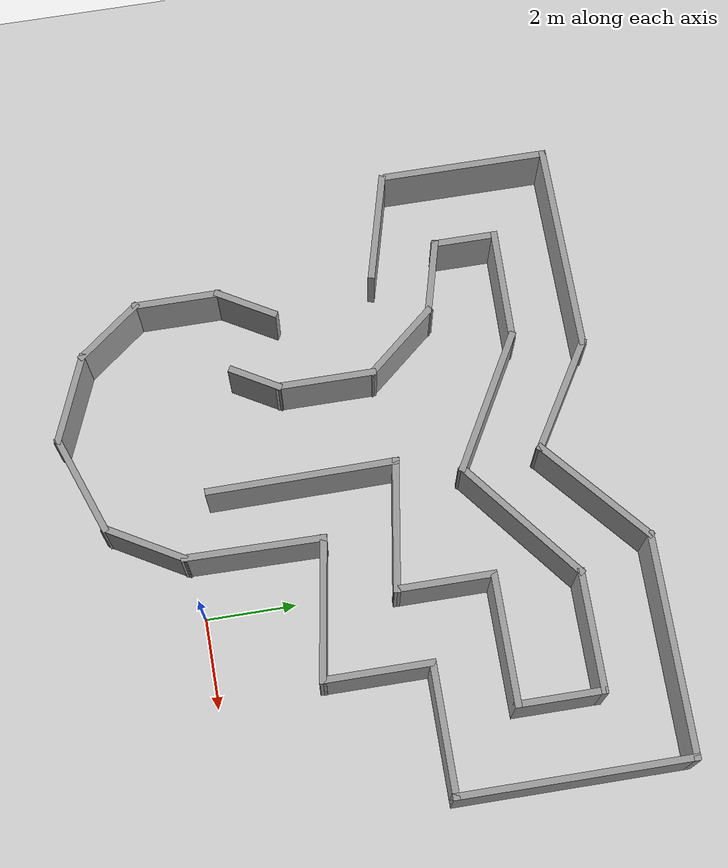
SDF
<sdf version="1.7">
 <world name="default">
  <model name="ground_plane">
   <static>1</static>
   <link name="link">
    <collision name="collision">
     <geometry><plane><normal>0 0 1</normal><size>100 100</size></plane></geometry>
     <surface>
      <contact><collide_bitmask>65535</collide_bitmask></contact>
      <friction><ode><mu>100</mu><mu2>50</mu2></ode></friction>
     </surface>
    </collision>
    <visual name="visual">
     <cast_shadows>0</cast_shadows>
     <geometry><plane><normal>0 0 1</normal><size>100 100</size></plane></geometry>
     <material>
      <script><uri>file://media/materials/scripts/gazebo.material</uri><name>Gazebo/Grey</name></script>
     </material>
    </visual>
   </link>
  </model>
  <model name="map_2">
   <link name="Wall_10">
    <pose>4.01324 4.53292 0 0 -0 3.14159</pose>
    <visual name="Wall_10_Visual">
     <pose>0 0 0.75 0 -0 0</pose>
     <geometry><box><size>2.75 0.15 1.5</size></box></geometry>
     <material>
      <script><uri>file://media/materials/scripts/gazebo.material</uri><name>Gazebo/Grey</name></script>
      <ambient>1 1 1 1</ambient>
      <shader type="pixel"/>
     </material>
     <meta><layer>0</layer></meta>
    </visual>
    <collision name="Wall_10_Collision">
     <pose>0 0 0.75 0 -0 0</pose>
     <geometry><box><size>2.75 0.15 1.5</size></box></geometry>
     <surface>
      <friction>
       <ode><mu>1</mu><mu2>1</mu2><fdir1>0 0 0</fdir1><slip1>0</slip1><slip2>0</slip2></ode>
       <torsional>
        <coefficient>1</coefficient>
        <patch_radius>0</patch_radius>
        <surface_radius>0</surface_radius>
        <use_patch_radius>1</use_patch_radius>
        <ode><slip>0</slip></ode>
       </torsional>
      </friction>
      <bounce><restitution_coefficient>0</restitution_coefficient><threshold>1e+06</threshold></bounce>
      <contact>
       <collide_without_contact>0</collide_without_contact>
       <collide_without_contact_bitmask>1</collide_without_contact_bitmask>
       <collide_bitmask>1</collide_bitmask>
       <ode>
        <soft_cfm>0</soft_cfm>
        <soft_erp>0.2</soft_erp>
        <kp>1e+13</kp>
        <kd>1</kd>
        <max_vel>0.01</max_vel>
        <min_depth>0</min_depth>
       </ode>
       <bullet>
        <split_impulse>1</split_impulse>
        <split_impulse_penetration_threshold>-0.01</split_impulse_penetration_threshold>
        <soft_cfm>0</soft_cfm>
        <soft_erp>0.2</soft_erp>
        <kp>1e+13</kp>
        <kd>1</kd>
       </bullet>
      </contact>
     </surface>
    </collision>
   </link>
   <link name="Wall_12">
    <pose>1.38174 3.48292 0 0 -0 0.667741</pose>
    <visual name="Wall_12_Visual">
     <pose>0 0 0.75 0 -0 0</pose>
     <geometry><box><size>3.54164 0.15 1.5</size></box></geometry>
     <material>
      <script><uri>file://media/materials/scripts/gazebo.material</uri><name>Gazebo/Grey</name></script>
      <ambient>1 1 1 1</ambient>
      <shader type="pixel"/>
     </material>
     <meta><layer>0</layer></meta>
    </visual>
    <collision name="Wall_12_Collision">
     <pose>0 0 0.75 0 -0 0</pose>
     <geometry><box><size>3.54164 0.15 1.5</size></box></geometry>
     <surface>
      <friction>
       <ode><mu>1</mu><mu2>1</mu2><fdir1>0 0 0</fdir1><slip1>0</slip1><slip2>0</slip2></ode>
       <torsional>
        <coefficient>1</coefficient>
        <patch_radius>0</patch_radius>
        <surface_radius>0</surface_radius>
        <use_patch_radius>1</use_patch_radius>
        <ode><slip>0</slip></ode>
       </torsional>
      </friction>
      <bounce><restitution_coefficient>0</restitution_coefficient><threshold>1e+06</threshold></bounce>
      <contact>
       <collide_without_contact>0</collide_without_contact>
       <collide_without_contact_bitmask>1</collide_without_contact_bitmask>
       <collide_bitmask>1</collide_bitmask>
       <ode>
        <soft_cfm>0</soft_cfm>
        <soft_erp>0.2</soft_erp>
        <kp>1e+13</kp>
        <kd>1</kd>
        <max_vel>0.01</max_vel>
        <min_depth>0</min_depth>
       </ode>
       <bullet>
        <split_impulse>1</split_impulse>
        <split_impulse_penetration_threshold>-0.01</split_impulse_penetration_threshold>
        <soft_cfm>0</soft_cfm>
        <soft_erp>0.2</soft_erp>
        <kp>1e+13</kp>
        <kd>1</kd>
       </bullet>
      </contact>
     </surface>
    </collision>
   </link>
   <link name="Wall_14">
    <pose>-1.37776 3.23742 0 0 0 -0.513054</pose>
    <visual name="Wall_14_Visual">
     <pose>0 0 0.75 0 -0 0</pose>
     <geometry><box><size>3.42797 0.15 1.5</size></box></geometry>
     <material>
      <script><uri>file://media/materials/scripts/gazebo.material</uri><name>Gazebo/Grey</name></script>
      <ambient>1 1 1 1</ambient>
      <shader type="pixel"/>
     </material>
     <meta><layer>0</layer></meta>
    </visual>
    <collision name="Wall_14_Collision">
     <pose>0 0 0.75 0 -0 0</pose>
     <geometry><box><size>3.42797 0.15 1.5</size></box></geometry>
     <surface>
      <friction>
       <ode><mu>1</mu><mu2>1</mu2><fdir1>0 0 0</fdir1><slip1>0</slip1><slip2>0</slip2></ode>
       <torsional>
        <coefficient>1</coefficient>
        <patch_radius>0</patch_radius>
        <surface_radius>0</surface_radius>
        <use_patch_radius>1</use_patch_radius>
        <ode><slip>0</slip></ode>
       </torsional>
      </friction>
      <bounce><restitution_coefficient>0</restitution_coefficient><threshold>1e+06</threshold></bounce>
      <contact>
       <collide_without_contact>0</collide_without_contact>
       <collide_without_contact_bitmask>1</collide_without_contact_bitmask>
       <collide_bitmask>1</collide_bitmask>
       <ode>
        <soft_cfm>0</soft_cfm>
        <soft_erp>0.2</soft_erp>
        <kp>1e+13</kp>
        <kd>1</kd>
        <max_vel>0.01</max_vel>
        <min_depth>0</min_depth>
       </ode>
       <bullet>
        <split_impulse>1</split_impulse>
        <split_impulse_penetration_threshold>-0.01</split_impulse_penetration_threshold>
        <soft_cfm>0</soft_cfm>
        <soft_erp>0.2</soft_erp>
        <kp>1e+13</kp>
        <kd>1</kd>
       </bullet>
      </contact>
     </surface>
    </collision>
   </link>
   <link name="Wall_16">
    <pose>-4.01276 4.06192 0 0 0 -0.016568</pose>
    <visual name="Wall_16_Visual">
     <pose>0 0 0.75 0 -0 0</pose>
     <geometry><box><size>2.56379 0.15 1.5</size></box></geometry>
     <material>
      <script><uri>file://media/materials/scripts/gazebo.material</uri><name>Gazebo/Grey</name></script>
      <ambient>1 1 1 1</ambient>
      <shader type="pixel"/>
     </material>
     <meta><layer>0</layer></meta>
    </visual>
    <collision name="Wall_16_Collision">
     <pose>0 0 0.75 0 -0 0</pose>
     <geometry><box><size>2.56379 0.15 1.5</size></box></geometry>
     <surface>
      <friction>
       <ode><mu>1</mu><mu2>1</mu2><fdir1>0 0 0</fdir1><slip1>0</slip1><slip2>0</slip2></ode>
       <torsional>
        <coefficient>1</coefficient>
        <patch_radius>0</patch_radius>
        <surface_radius>0</surface_radius>
        <use_patch_radius>1</use_patch_radius>
        <ode><slip>0</slip></ode>
       </torsional>
      </friction>
      <bounce><restitution_coefficient>0</restitution_coefficient><threshold>1e+06</threshold></bounce>
      <contact>
       <collide_without_contact>0</collide_without_contact>
       <collide_without_contact_bitmask>1</collide_without_contact_bitmask>
       <collide_bitmask>1</collide_bitmask>
       <ode>
        <soft_cfm>0</soft_cfm>
        <soft_erp>0.2</soft_erp>
        <kp>1e+13</kp>
        <kd>1</kd>
        <max_vel>0.01</max_vel>
        <min_depth>0</min_depth>
       </ode>
       <bullet>
        <split_impulse>1</split_impulse>
        <split_impulse_penetration_threshold>-0.01</split_impulse_penetration_threshold>
        <soft_cfm>0</soft_cfm>
        <soft_erp>0.2</soft_erp>
        <kp>1e+13</kp>
        <kd>1</kd>
       </bullet>
      </contact>
     </surface>
    </collision>
   </link>
   <link name="Wall_18">
    <pose>-5.21976 3.40692 0 0 0 -1.5708</pose>
    <visual name="Wall_18_Visual">
     <pose>0 0 0.75 0 -0 0</pose>
     <geometry><box><size>1.5 0.15 1.5</size></box></geometry>
     <material>
      <script><uri>file://media/materials/scripts/gazebo.material</uri><name>Gazebo/Grey</name></script>
      <ambient>1 1 1 1</ambient>
      <shader type="pixel"/>
     </material>
     <meta><layer>0</layer></meta>
    </visual>
    <collision name="Wall_18_Collision">
     <pose>0 0 0.75 0 -0 0</pose>
     <geometry><box><size>1.5 0.15 1.5</size></box></geometry>
     <surface>
      <friction>
       <ode><mu>1</mu><mu2>1</mu2><fdir1>0 0 0</fdir1><slip1>0</slip1><slip2>0</slip2></ode>
       <torsional>
        <coefficient>1</coefficient>
        <patch_radius>0</patch_radius>
        <surface_radius>0</surface_radius>
        <use_patch_radius>1</use_patch_radius>
        <ode><slip>0</slip></ode>
       </torsional>
      </friction>
      <bounce><restitution_coefficient>0</restitution_coefficient><threshold>1e+06</threshold></bounce>
      <contact>
       <collide_without_contact>0</collide_without_contact>
       <collide_without_contact_bitmask>1</collide_without_contact_bitmask>
       <collide_bitmask>1</collide_bitmask>
       <ode>
        <soft_cfm>0</soft_cfm>
        <soft_erp>0.2</soft_erp>
        <kp>1e+13</kp>
        <kd>1</kd>
        <max_vel>0.01</max_vel>
        <min_depth>0</min_depth>
       </ode>
       <bullet>
        <split_impulse>1</split_impulse>
        <split_impulse_penetration_threshold>-0.01</split_impulse_penetration_threshold>
        <soft_cfm>0</soft_cfm>
        <soft_erp>0.2</soft_erp>
        <kp>1e+13</kp>
        <kd>1</kd>
       </bullet>
      </contact>
     </surface>
    </collision>
   </link>
   <link name="Wall_19">
    <pose>-4.44676 2.52492 0 0 0 -0.261649</pose>
    <visual name="Wall_19_Visual">
     <pose>0 0 0.75 0 -0 0</pose>
     <geometry><box><size>1.75 0.15 1.5</size></box></geometry>
     <material>
      <script><uri>file://media/materials/scripts/gazebo.material</uri><name>Gazebo/Grey</name></script>
      <ambient>1 1 1 1</ambient>
      <shader type="pixel"/>
     </material>
     <meta><layer>0</layer></meta>
    </visual>
    <collision name="Wall_19_Collision">
     <pose>0 0 0.75 0 -0 0</pose>
     <geometry><box><size>1.75 0.15 1.5</size></box></geometry>
     <surface>
      <friction>
       <ode><mu>1</mu><mu2>1</mu2><fdir1>0 0 0</fdir1><slip1>0</slip1><slip2>0</slip2></ode>
       <torsional>
        <coefficient>1</coefficient>
        <patch_radius>0</patch_radius>
        <surface_radius>0</surface_radius>
        <use_patch_radius>1</use_patch_radius>
        <ode><slip>0</slip></ode>
       </torsional>
      </friction>
      <bounce><restitution_coefficient>0</restitution_coefficient><threshold>1e+06</threshold></bounce>
      <contact>
       <collide_without_contact>0</collide_without_contact>
       <collide_without_contact_bitmask>1</collide_without_contact_bitmask>
       <collide_bitmask>1</collide_bitmask>
       <ode>
        <soft_cfm>0</soft_cfm>
        <soft_erp>0.2</soft_erp>
        <kp>1e+13</kp>
        <kd>1</kd>
        <max_vel>0.01</max_vel>
        <min_depth>0</min_depth>
       </ode>
       <bullet>
        <split_impulse>1</split_impulse>
        <split_impulse_penetration_threshold>-0.01</split_impulse_penetration_threshold>
        <soft_cfm>0</soft_cfm>
        <soft_erp>0.2</soft_erp>
        <kp>1e+13</kp>
        <kd>1</kd>
       </bullet>
      </contact>
     </surface>
    </collision>
   </link>
   <link name="Wall_2">
    <pose>-0.335262 -1.03908 0 0 -0 1.5788</pose>
    <visual name="Wall_2_Visual">
     <pose>0 0 0.75 0 -0 0</pose>
     <geometry><box><size>4.27213 0.15 1.5</size></box></geometry>
     <material>
      <script><uri>file://media/materials/scripts/gazebo.material</uri><name>Gazebo/Grey</name></script>
      <ambient>1 1 1 1</ambient>
      <shader type="pixel"/>
     </material>
     <meta><layer>0</layer></meta>
    </visual>
    <collision name="Wall_2_Collision">
     <pose>0 0 0.75 0 -0 0</pose>
     <geometry><box><size>4.27213 0.15 1.5</size></box></geometry>
     <surface>
      <friction>
       <ode><mu>1</mu><mu2>1</mu2><fdir1>0 0 0</fdir1><slip1>0</slip1><slip2>0</slip2></ode>
       <torsional>
        <coefficient>1</coefficient>
        <patch_radius>0</patch_radius>
        <surface_radius>0</surface_radius>
        <use_patch_radius>1</use_patch_radius>
        <ode><slip>0</slip></ode>
       </torsional>
      </friction>
      <bounce><restitution_coefficient>0</restitution_coefficient><threshold>1e+06</threshold></bounce>
      <contact>
       <collide_without_contact>0</collide_without_contact>
       <collide_without_contact_bitmask>1</collide_without_contact_bitmask>
       <collide_bitmask>1</collide_bitmask>
       <ode>
        <soft_cfm>0</soft_cfm>
        <soft_erp>0.2</soft_erp>
        <kp>1e+13</kp>
        <kd>1</kd>
        <max_vel>0.01</max_vel>
        <min_depth>0</min_depth>
       </ode>
       <bullet>
        <split_impulse>1</split_impulse>
        <split_impulse_penetration_threshold>-0.01</split_impulse_penetration_threshold>
        <soft_cfm>0</soft_cfm>
        <soft_erp>0.2</soft_erp>
        <kp>1e+13</kp>
        <kd>1</kd>
       </bullet>
      </contact>
     </surface>
    </collision>
   </link>
   <link name="Wall_21">
    <pose>-3.05876 1.59092 0 0 -0 2.27293</pose>
    <visual name="Wall_21_Visual">
     <pose>0 0 0.75 0 -0 0</pose>
     <geometry><box><size>2.05434 0.15 1.5</size></box></geometry>
     <material>
      <script><uri>file://media/materials/scripts/gazebo.material</uri><name>Gazebo/Grey</name></script>
      <ambient>1 1 1 1</ambient>
      <shader type="pixel"/>
     </material>
     <meta><layer>0</layer></meta>
    </visual>
    <collision name="Wall_21_Collision">
     <pose>0 0 0.75 0 -0 0</pose>
     <geometry><box><size>2.05434 0.15 1.5</size></box></geometry>
     <surface>
      <friction>
       <ode><mu>1</mu><mu2>1</mu2><fdir1>0 0 0</fdir1><slip1>0</slip1><slip2>0</slip2></ode>
       <torsional>
        <coefficient>1</coefficient>
        <patch_radius>0</patch_radius>
        <surface_radius>0</surface_radius>
        <use_patch_radius>1</use_patch_radius>
        <ode><slip>0</slip></ode>
       </torsional>
      </friction>
      <bounce><restitution_coefficient>0</restitution_coefficient><threshold>1e+06</threshold></bounce>
      <contact>
       <collide_without_contact>0</collide_without_contact>
       <collide_without_contact_bitmask>1</collide_without_contact_bitmask>
       <collide_bitmask>1</collide_bitmask>
       <ode>
        <soft_cfm>0</soft_cfm>
        <soft_erp>0.2</soft_erp>
        <kp>1e+13</kp>
        <kd>1</kd>
        <max_vel>0.01</max_vel>
        <min_depth>0</min_depth>
       </ode>
       <bullet>
        <split_impulse>1</split_impulse>
        <split_impulse_penetration_threshold>-0.01</split_impulse_penetration_threshold>
        <soft_cfm>0</soft_cfm>
        <soft_erp>0.2</soft_erp>
        <kp>1e+13</kp>
        <kd>1</kd>
       </bullet>
      </contact>
     </surface>
    </collision>
   </link>
   <link name="Wall_42">
    <pose>-2.44376 -0.186078 0 0 0 -1.5708</pose>
    <visual name="Wall_42_Visual">
     <pose>0 0 0.75 0 -0 0</pose>
     <geometry><box><size>2.25 0.15 1.5</size></box></geometry>
     <material>
      <script><uri>file://media/materials/scripts/gazebo.material</uri><name>Gazebo/Grey</name></script>
      <ambient>1 1 1 1</ambient>
      <shader type="pixel"/>
     </material>
     <meta><layer>0</layer></meta>
    </visual>
    <collision name="Wall_42_Collision">
     <pose>0 0 0.75 0 -0 0</pose>
     <geometry><box><size>2.25 0.15 1.5</size></box></geometry>
     <surface>
      <friction>
       <ode><mu>1</mu><mu2>1</mu2><fdir1>0 0 0</fdir1><slip1>0</slip1><slip2>0</slip2></ode>
       <torsional>
        <coefficient>1</coefficient>
        <patch_radius>0</patch_radius>
        <surface_radius>0</surface_radius>
        <use_patch_radius>1</use_patch_radius>
        <ode><slip>0</slip></ode>
       </torsional>
      </friction>
      <bounce><restitution_coefficient>0</restitution_coefficient><threshold>1e+06</threshold></bounce>
      <contact>
       <collide_without_contact>0</collide_without_contact>
       <collide_without_contact_bitmask>1</collide_without_contact_bitmask>
       <collide_bitmask>1</collide_bitmask>
       <ode>
        <soft_cfm>0</soft_cfm>
        <soft_erp>0.2</soft_erp>
        <kp>1e+13</kp>
        <kd>1</kd>
        <max_vel>0.01</max_vel>
        <min_depth>0</min_depth>
       </ode>
       <bullet>
        <split_impulse>1</split_impulse>
        <split_impulse_penetration_threshold>-0.01</split_impulse_penetration_threshold>
        <soft_cfm>0</soft_cfm>
        <soft_erp>0.2</soft_erp>
        <kp>1e+13</kp>
        <kd>1</kd>
       </bullet>
      </contact>
     </surface>
    </collision>
   </link>
   <link name="Wall_43">
    <pose>-2.71876 -1.71208 0 0 0 -2.09468</pose>
    <visual name="Wall_43_Visual">
     <pose>0 0 0.75 0 -0 0</pose>
     <geometry><box><size>1.25 0.15 1.5</size></box></geometry>
     <material>
      <script><uri>file://media/materials/scripts/gazebo.material</uri><name>Gazebo/Grey</name></script>
      <ambient>1 1 1 1</ambient>
      <shader type="pixel"/>
     </material>
     <meta><layer>0</layer></meta>
    </visual>
    <collision name="Wall_43_Collision">
     <pose>0 0 0.75 0 -0 0</pose>
     <geometry><box><size>1.25 0.15 1.5</size></box></geometry>
     <surface>
      <friction>
       <ode><mu>1</mu><mu2>1</mu2><fdir1>0 0 0</fdir1><slip1>0</slip1><slip2>0</slip2></ode>
       <torsional>
        <coefficient>1</coefficient>
        <patch_radius>0</patch_radius>
        <surface_radius>0</surface_radius>
        <use_patch_radius>1</use_patch_radius>
        <ode><slip>0</slip></ode>
       </torsional>
      </friction>
      <bounce><restitution_coefficient>0</restitution_coefficient><threshold>1e+06</threshold></bounce>
      <contact>
       <collide_without_contact>0</collide_without_contact>
       <collide_without_contact_bitmask>1</collide_without_contact_bitmask>
       <collide_bitmask>1</collide_bitmask>
       <ode>
        <soft_cfm>0</soft_cfm>
        <soft_erp>0.2</soft_erp>
        <kp>1e+13</kp>
        <kd>1</kd>
        <max_vel>0.01</max_vel>
        <min_depth>0</min_depth>
       </ode>
       <bullet>
        <split_impulse>1</split_impulse>
        <split_impulse_penetration_threshold>-0.01</split_impulse_penetration_threshold>
        <soft_cfm>0</soft_cfm>
        <soft_erp>0.2</soft_erp>
        <kp>1e+13</kp>
        <kd>1</kd>
       </bullet>
      </contact>
     </surface>
    </collision>
   </link>
   <link name="Wall_45">
    <pose>-4.48526 -1.67358 0 0 0 -2.09444</pose>
    <visual name="Wall_45_Visual">
     <pose>0 0 0.75 0 -0 0</pose>
     <geometry><box><size>1.5 0.15 1.5</size></box></geometry>
     <material>
      <script><uri>file://media/materials/scripts/gazebo.material</uri><name>Gazebo/Grey</name></script>
      <ambient>1 1 1 1</ambient>
      <shader type="pixel"/>
     </material>
     <meta><layer>0</layer></meta>
    </visual>
    <collision name="Wall_45_Collision">
     <pose>0 0 0.75 0 -0 0</pose>
     <geometry><box><size>1.5 0.15 1.5</size></box></geometry>
     <surface>
      <friction>
       <ode><mu>1</mu><mu2>1</mu2><fdir1>0 0 0</fdir1><slip1>0</slip1><slip2>0</slip2></ode>
       <torsional>
        <coefficient>1</coefficient>
        <patch_radius>0</patch_radius>
        <surface_radius>0</surface_radius>
        <use_patch_radius>1</use_patch_radius>
        <ode><slip>0</slip></ode>
       </torsional>
      </friction>
      <bounce><restitution_coefficient>0</restitution_coefficient><threshold>1e+06</threshold></bounce>
      <contact>
       <collide_without_contact>0</collide_without_contact>
       <collide_without_contact_bitmask>1</collide_without_contact_bitmask>
       <collide_bitmask>1</collide_bitmask>
       <ode>
        <soft_cfm>0</soft_cfm>
        <soft_erp>0.2</soft_erp>
        <kp>1e+13</kp>
        <kd>1</kd>
        <max_vel>0.01</max_vel>
        <min_depth>0</min_depth>
       </ode>
       <bullet>
        <split_impulse>1</split_impulse>
        <split_impulse_penetration_threshold>-0.01</split_impulse_penetration_threshold>
        <soft_cfm>0</soft_cfm>
        <soft_erp>0.2</soft_erp>
        <kp>1e+13</kp>
        <kd>1</kd>
       </bullet>
      </contact>
     </surface>
    </collision>
   </link>
   <link name="Wall_46">
    <pose>-4.82276 -3.18308 0 0 0 -1.5708</pose>
    <visual name="Wall_46_Visual">
     <pose>0 0 0.75 0 -0 0</pose>
     <geometry><box><size>2 0.15 1.5</size></box></geometry>
     <material>
      <script><uri>file://media/materials/scripts/gazebo.material</uri><name>Gazebo/Grey</name></script>
      <ambient>1 1 1 1</ambient>
      <shader type="pixel"/>
     </material>
     <meta><layer>0</layer></meta>
    </visual>
    <collision name="Wall_46_Collision">
     <pose>0 0 0.75 0 -0 0</pose>
     <geometry><box><size>2 0.15 1.5</size></box></geometry>
     <surface>
      <friction>
       <ode><mu>1</mu><mu2>1</mu2><fdir1>0 0 0</fdir1><slip1>0</slip1><slip2>0</slip2></ode>
       <torsional>
        <coefficient>1</coefficient>
        <patch_radius>0</patch_radius>
        <surface_radius>0</surface_radius>
        <use_patch_radius>1</use_patch_radius>
        <ode><slip>0</slip></ode>
       </torsional>
      </friction>
      <bounce><restitution_coefficient>0</restitution_coefficient><threshold>1e+06</threshold></bounce>
      <contact>
       <collide_without_contact>0</collide_without_contact>
       <collide_without_contact_bitmask>1</collide_without_contact_bitmask>
       <collide_bitmask>1</collide_bitmask>
       <ode>
        <soft_cfm>0</soft_cfm>
        <soft_erp>0.2</soft_erp>
        <kp>1e+13</kp>
        <kd>1</kd>
        <max_vel>0.01</max_vel>
        <min_depth>0</min_depth>
       </ode>
       <bullet>
        <split_impulse>1</split_impulse>
        <split_impulse_penetration_threshold>-0.01</split_impulse_penetration_threshold>
        <soft_cfm>0</soft_cfm>
        <soft_erp>0.2</soft_erp>
        <kp>1e+13</kp>
        <kd>1</kd>
       </bullet>
      </contact>
     </surface>
    </collision>
   </link>
   <link name="Wall_48">
    <pose>-4.32126 -4.76258 0 0 -0 2.22461</pose>
    <visual name="Wall_48_Visual">
     <pose>0 0 0.75 0 -0 0</pose>
     <geometry><box><size>1.79931 0.15 1.5</size></box></geometry>
     <material>
      <script><uri>file://media/materials/scripts/gazebo.material</uri><name>Gazebo/Grey</name></script>
      <ambient>1 1 1 1</ambient>
      <shader type="pixel"/>
     </material>
     <meta><layer>0</layer></meta>
    </visual>
    <collision name="Wall_48_Collision">
     <pose>0 0 0.75 0 -0 0</pose>
     <geometry><box><size>1.79931 0.15 1.5</size></box></geometry>
     <surface>
      <friction>
       <ode><mu>1</mu><mu2>1</mu2><fdir1>0 0 0</fdir1><slip1>0</slip1><slip2>0</slip2></ode>
       <torsional>
        <coefficient>1</coefficient>
        <patch_radius>0</patch_radius>
        <surface_radius>0</surface_radius>
        <use_patch_radius>1</use_patch_radius>
        <ode><slip>0</slip></ode>
       </torsional>
      </friction>
      <bounce><restitution_coefficient>0</restitution_coefficient><threshold>1e+06</threshold></bounce>
      <contact>
       <collide_without_contact>0</collide_without_contact>
       <collide_without_contact_bitmask>1</collide_without_contact_bitmask>
       <collide_bitmask>1</collide_bitmask>
       <ode>
        <soft_cfm>0</soft_cfm>
        <soft_erp>0.2</soft_erp>
        <kp>1e+13</kp>
        <kd>1</kd>
        <max_vel>0.01</max_vel>
        <min_depth>0</min_depth>
       </ode>
       <bullet>
        <split_impulse>1</split_impulse>
        <split_impulse_penetration_threshold>-0.01</split_impulse_penetration_threshold>
        <soft_cfm>0</soft_cfm>
        <soft_erp>0.2</soft_erp>
        <kp>1e+13</kp>
        <kd>1</kd>
       </bullet>
      </contact>
     </surface>
    </collision>
   </link>
   <link name="Wall_5">
    <pose>1.05574 0.802422 0 0 -0 2.98689</pose>
    <visual name="Wall_5_Visual">
     <pose>0 0 0.75 0 -0 0</pose>
     <geometry><box><size>2.99933 0.15 1.5</size></box></geometry>
     <material>
      <script><uri>file://media/materials/scripts/gazebo.material</uri><name>Gazebo/Grey</name></script>
      <ambient>1 1 1 1</ambient>
      <shader type="pixel"/>
     </material>
     <meta><layer>0</layer></meta>
    </visual>
    <collision name="Wall_5_Collision">
     <pose>0 0 0.75 0 -0 0</pose>
     <geometry><box><size>2.99933 0.15 1.5</size></box></geometry>
     <surface>
      <friction>
       <ode><mu>1</mu><mu2>1</mu2><fdir1>0 0 0</fdir1><slip1>0</slip1><slip2>0</slip2></ode>
       <torsional>
        <coefficient>1</coefficient>
        <patch_radius>0</patch_radius>
        <surface_radius>0</surface_radius>
        <use_patch_radius>1</use_patch_radius>
        <ode><slip>0</slip></ode>
       </torsional>
      </friction>
      <bounce><restitution_coefficient>0</restitution_coefficient><threshold>1e+06</threshold></bounce>
      <contact>
       <collide_without_contact>0</collide_without_contact>
       <collide_without_contact_bitmask>1</collide_without_contact_bitmask>
       <collide_bitmask>1</collide_bitmask>
       <ode>
        <soft_cfm>0</soft_cfm>
        <soft_erp>0.2</soft_erp>
        <kp>1e+13</kp>
        <kd>1</kd>
        <max_vel>0.01</max_vel>
        <min_depth>0</min_depth>
       </ode>
       <bullet>
        <split_impulse>1</split_impulse>
        <split_impulse_penetration_threshold>-0.01</split_impulse_penetration_threshold>
        <soft_cfm>0</soft_cfm>
        <soft_erp>0.2</soft_erp>
        <kp>1e+13</kp>
        <kd>1</kd>
       </bullet>
      </contact>
     </surface>
    </collision>
   </link>
   <link name="Wall_51">
    <pose>-2.90126 -5.79458 0 0 -0 2.75164</pose>
    <visual name="Wall_51_Visual">
     <pose>0 0 0.75 0 -0 0</pose>
     <geometry><box><size>2.13517 0.15 1.5</size></box></geometry>
     <material>
      <script><uri>file://media/materials/scripts/gazebo.material</uri><name>Gazebo/Grey</name></script>
      <ambient>1 1 1 1</ambient>
      <shader type="pixel"/>
     </material>
     <meta><layer>0</layer></meta>
    </visual>
    <collision name="Wall_51_Collision">
     <pose>0 0 0.75 0 -0 0</pose>
     <geometry><box><size>2.13517 0.15 1.5</size></box></geometry>
     <surface>
      <friction>
       <ode><mu>1</mu><mu2>1</mu2><fdir1>0 0 0</fdir1><slip1>0</slip1><slip2>0</slip2></ode>
       <torsional>
        <coefficient>1</coefficient>
        <patch_radius>0</patch_radius>
        <surface_radius>0</surface_radius>
        <use_patch_radius>1</use_patch_radius>
        <ode><slip>0</slip></ode>
       </torsional>
      </friction>
      <bounce><restitution_coefficient>0</restitution_coefficient><threshold>1e+06</threshold></bounce>
      <contact>
       <collide_without_contact>0</collide_without_contact>
       <collide_without_contact_bitmask>1</collide_without_contact_bitmask>
       <collide_bitmask>1</collide_bitmask>
       <ode>
        <soft_cfm>0</soft_cfm>
        <soft_erp>0.2</soft_erp>
        <kp>1e+13</kp>
        <kd>1</kd>
        <max_vel>0.01</max_vel>
        <min_depth>0</min_depth>
       </ode>
       <bullet>
        <split_impulse>1</split_impulse>
        <split_impulse_penetration_threshold>-0.01</split_impulse_penetration_threshold>
        <soft_cfm>0</soft_cfm>
        <soft_erp>0.2</soft_erp>
        <kp>1e+13</kp>
        <kd>1</kd>
       </bullet>
      </contact>
     </surface>
    </collision>
   </link>
   <link name="Wall_53">
    <pose>0.603738 -4.61208 0 0 0 -2.09443</pose>
    <visual name="Wall_53_Visual">
     <pose>0 0 0.75 0 -0 0</pose>
     <geometry><box><size>2 0.15 1.5</size></box></geometry>
     <material>
      <script><uri>file://media/materials/scripts/gazebo.material</uri><name>Gazebo/Grey</name></script>
      <ambient>1 1 1 1</ambient>
      <shader type="pixel"/>
     </material>
     <meta><layer>0</layer></meta>
    </visual>
    <collision name="Wall_53_Collision">
     <pose>0 0 0.75 0 -0 0</pose>
     <geometry><box><size>2 0.15 1.5</size></box></geometry>
     <surface>
      <friction>
       <ode><mu>1</mu><mu2>1</mu2><fdir1>0 0 0</fdir1><slip1>0</slip1><slip2>0</slip2></ode>
       <torsional>
        <coefficient>1</coefficient>
        <patch_radius>0</patch_radius>
        <surface_radius>0</surface_radius>
        <use_patch_radius>1</use_patch_radius>
        <ode><slip>0</slip></ode>
       </torsional>
      </friction>
      <bounce><restitution_coefficient>0</restitution_coefficient><threshold>1e+06</threshold></bounce>
      <contact>
       <collide_without_contact>0</collide_without_contact>
       <collide_without_contact_bitmask>1</collide_without_contact_bitmask>
       <collide_bitmask>1</collide_bitmask>
       <ode>
        <soft_cfm>0</soft_cfm>
        <soft_erp>0.2</soft_erp>
        <kp>1e+13</kp>
        <kd>1</kd>
        <max_vel>0.01</max_vel>
        <min_depth>0</min_depth>
       </ode>
       <bullet>
        <split_impulse>1</split_impulse>
        <split_impulse_penetration_threshold>-0.01</split_impulse_penetration_threshold>
        <soft_cfm>0</soft_cfm>
        <soft_erp>0.2</soft_erp>
        <kp>1e+13</kp>
        <kd>1</kd>
       </bullet>
      </contact>
     </surface>
    </collision>
   </link>
   <link name="Wall_54">
    <pose>-0.920762 -5.79258 0 0 0 -2.79839</pose>
    <visual name="Wall_54_Visual">
     <pose>0 0 0.75 0 -0 0</pose>
     <geometry><box><size>2.40606 0.15 1.5</size></box></geometry>
     <material>
      <script><uri>file://media/materials/scripts/gazebo.material</uri><name>Gazebo/Grey</name></script>
      <ambient>1 1 1 1</ambient>
      <shader type="pixel"/>
     </material>
     <meta><layer>0</layer></meta>
    </visual>
    <collision name="Wall_54_Collision">
     <pose>0 0 0.75 0 -0 0</pose>
     <geometry><box><size>2.40606 0.15 1.5</size></box></geometry>
     <surface>
      <friction>
       <ode><mu>1</mu><mu2>1</mu2><fdir1>0 0 0</fdir1><slip1>0</slip1><slip2>0</slip2></ode>
       <torsional>
        <coefficient>1</coefficient>
        <patch_radius>0</patch_radius>
        <surface_radius>0</surface_radius>
        <use_patch_radius>1</use_patch_radius>
        <ode><slip>0</slip></ode>
       </torsional>
      </friction>
      <bounce><restitution_coefficient>0</restitution_coefficient><threshold>1e+06</threshold></bounce>
      <contact>
       <collide_without_contact>0</collide_without_contact>
       <collide_without_contact_bitmask>1</collide_without_contact_bitmask>
       <collide_bitmask>1</collide_bitmask>
       <ode>
        <soft_cfm>0</soft_cfm>
        <soft_erp>0.2</soft_erp>
        <kp>1e+13</kp>
        <kd>1</kd>
        <max_vel>0.01</max_vel>
        <min_depth>0</min_depth>
       </ode>
       <bullet>
        <split_impulse>1</split_impulse>
        <split_impulse_penetration_threshold>-0.01</split_impulse_penetration_threshold>
        <soft_cfm>0</soft_cfm>
        <soft_erp>0.2</soft_erp>
        <kp>1e+13</kp>
        <kd>1</kd>
       </bullet>
      </contact>
     </surface>
    </collision>
   </link>
   <link name="Wall_56">
    <pose>1.08274 -2.30408 0 0 -0 1.55985</pose>
    <visual name="Wall_56_Visual">
     <pose>0 0 0.75 0 -0 0</pose>
     <geometry><box><size>3.16414 0.15 1.5</size></box></geometry>
     <material>
      <script><uri>file://media/materials/scripts/gazebo.material</uri><name>Gazebo/Grey</name></script>
      <ambient>1 1 1 1</ambient>
      <shader type="pixel"/>
     </material>
     <meta><layer>0</layer></meta>
    </visual>
    <collision name="Wall_56_Collision">
     <pose>0 0 0.75 0 -0 0</pose>
     <geometry><box><size>3.16414 0.15 1.5</size></box></geometry>
     <surface>
      <friction>
       <ode><mu>1</mu><mu2>1</mu2><fdir1>0 0 0</fdir1><slip1>0</slip1><slip2>0</slip2></ode>
       <torsional>
        <coefficient>1</coefficient>
        <patch_radius>0</patch_radius>
        <surface_radius>0</surface_radius>
        <use_patch_radius>1</use_patch_radius>
        <ode><slip>0</slip></ode>
       </torsional>
      </friction>
      <bounce><restitution_coefficient>0</restitution_coefficient><threshold>1e+06</threshold></bounce>
      <contact>
       <collide_without_contact>0</collide_without_contact>
       <collide_without_contact_bitmask>1</collide_without_contact_bitmask>
       <collide_bitmask>1</collide_bitmask>
       <ode>
        <soft_cfm>0</soft_cfm>
        <soft_erp>0.2</soft_erp>
        <kp>1e+13</kp>
        <kd>1</kd>
        <max_vel>0.01</max_vel>
        <min_depth>0</min_depth>
       </ode>
       <bullet>
        <split_impulse>1</split_impulse>
        <split_impulse_penetration_threshold>-0.01</split_impulse_penetration_threshold>
        <soft_cfm>0</soft_cfm>
        <soft_erp>0.2</soft_erp>
        <kp>1e+13</kp>
        <kd>1</kd>
       </bullet>
      </contact>
     </surface>
    </collision>
   </link>
   <link name="Wall_61">
    <pose>2.62424 -1.04158 0 0 -0 2.98262</pose>
    <visual name="Wall_61_Visual">
     <pose>0 0 0.75 0 -0 0</pose>
     <geometry><box><size>3.23875 0.15 1.5</size></box></geometry>
     <material>
      <script><uri>file://media/materials/scripts/gazebo.material</uri><name>Gazebo/Grey</name></script>
      <ambient>1 1 1 1</ambient>
      <shader type="pixel"/>
     </material>
     <meta><layer>0</layer></meta>
    </visual>
    <collision name="Wall_61_Collision">
     <pose>0 0 0.75 0 -0 0</pose>
     <geometry><box><size>3.23875 0.15 1.5</size></box></geometry>
     <surface>
      <friction>
       <ode><mu>1</mu><mu2>1</mu2><fdir1>0 0 0</fdir1><slip1>0</slip1><slip2>0</slip2></ode>
       <torsional>
        <coefficient>1</coefficient>
        <patch_radius>0</patch_radius>
        <surface_radius>0</surface_radius>
        <use_patch_radius>1</use_patch_radius>
        <ode><slip>0</slip></ode>
       </torsional>
      </friction>
      <bounce><restitution_coefficient>0</restitution_coefficient><threshold>1e+06</threshold></bounce>
      <contact>
       <collide_without_contact>0</collide_without_contact>
       <collide_without_contact_bitmask>1</collide_without_contact_bitmask>
       <collide_bitmask>1</collide_bitmask>
       <ode>
        <soft_cfm>0</soft_cfm>
        <soft_erp>0.2</soft_erp>
        <kp>1e+13</kp>
        <kd>1</kd>
        <max_vel>0.01</max_vel>
        <min_depth>0</min_depth>
       </ode>
       <bullet>
        <split_impulse>1</split_impulse>
        <split_impulse_penetration_threshold>-0.01</split_impulse_penetration_threshold>
        <soft_cfm>0</soft_cfm>
        <soft_erp>0.2</soft_erp>
        <kp>1e+13</kp>
        <kd>1</kd>
       </bullet>
      </contact>
     </surface>
    </collision>
   </link>
   <link name="Wall_63">
    <pose>4.14924 -0.111078 0 0 -0 1.5708</pose>
    <visual name="Wall_63_Visual">
     <pose>0 0 0.75 0 -0 0</pose>
     <geometry><box><size>2.5 0.15 1.5</size></box></geometry>
     <material>
      <script><uri>file://media/materials/scripts/gazebo.material</uri><name>Gazebo/Grey</name></script>
      <ambient>1 1 1 1</ambient>
      <shader type="pixel"/>
     </material>
     <meta><layer>0</layer></meta>
    </visual>
    <collision name="Wall_63_Collision">
     <pose>0 0 0.75 0 -0 0</pose>
     <geometry><box><size>2.5 0.15 1.5</size></box></geometry>
     <surface>
      <friction>
       <ode><mu>1</mu><mu2>1</mu2><fdir1>0 0 0</fdir1><slip1>0</slip1><slip2>0</slip2></ode>
       <torsional>
        <coefficient>1</coefficient>
        <patch_radius>0</patch_radius>
        <surface_radius>0</surface_radius>
        <use_patch_radius>1</use_patch_radius>
        <ode><slip>0</slip></ode>
       </torsional>
      </friction>
      <bounce><restitution_coefficient>0</restitution_coefficient><threshold>1e+06</threshold></bounce>
      <contact>
       <collide_without_contact>0</collide_without_contact>
       <collide_without_contact_bitmask>1</collide_without_contact_bitmask>
       <collide_bitmask>1</collide_bitmask>
       <ode>
        <soft_cfm>0</soft_cfm>
        <soft_erp>0.2</soft_erp>
        <kp>1e+13</kp>
        <kd>1</kd>
        <max_vel>0.01</max_vel>
        <min_depth>0</min_depth>
       </ode>
       <bullet>
        <split_impulse>1</split_impulse>
        <split_impulse_penetration_threshold>-0.01</split_impulse_penetration_threshold>
        <soft_cfm>0</soft_cfm>
        <soft_erp>0.2</soft_erp>
        <kp>1e+13</kp>
        <kd>1</kd>
       </bullet>
      </contact>
     </surface>
    </collision>
   </link>
   <link name="Wall_64">
    <pose>5.57424 1.06392 0 0 -0 0</pose>
    <visual name="Wall_64_Visual">
     <pose>0 0 0.75 0 -0 0</pose>
     <geometry><box><size>3 0.15 1.5</size></box></geometry>
     <material>
      <script><uri>file://media/materials/scripts/gazebo.material</uri><name>Gazebo/Grey</name></script>
      <ambient>1 1 1 1</ambient>
      <shader type="pixel"/>
     </material>
     <meta><layer>0</layer></meta>
    </visual>
    <collision name="Wall_64_Collision">
     <pose>0 0 0.75 0 -0 0</pose>
     <geometry><box><size>3 0.15 1.5</size></box></geometry>
     <surface>
      <friction>
       <ode><mu>1</mu><mu2>1</mu2><fdir1>0 0 0</fdir1><slip1>0</slip1><slip2>0</slip2></ode>
       <torsional>
        <coefficient>1</coefficient>
        <patch_radius>0</patch_radius>
        <surface_radius>0</surface_radius>
        <use_patch_radius>1</use_patch_radius>
        <ode><slip>0</slip></ode>
       </torsional>
      </friction>
      <bounce><restitution_coefficient>0</restitution_coefficient><threshold>1e+06</threshold></bounce>
      <contact>
       <collide_without_contact>0</collide_without_contact>
       <collide_without_contact_bitmask>1</collide_without_contact_bitmask>
       <collide_bitmask>1</collide_bitmask>
       <ode>
        <soft_cfm>0</soft_cfm>
        <soft_erp>0.2</soft_erp>
        <kp>1e+13</kp>
        <kd>1</kd>
        <max_vel>0.01</max_vel>
        <min_depth>0</min_depth>
       </ode>
       <bullet>
        <split_impulse>1</split_impulse>
        <split_impulse_penetration_threshold>-0.01</split_impulse_penetration_threshold>
        <soft_cfm>0</soft_cfm>
        <soft_erp>0.2</soft_erp>
        <kp>1e+13</kp>
        <kd>1</kd>
       </bullet>
      </contact>
     </surface>
    </collision>
   </link>
   <link name="Wall_65">
    <pose>6.99924 3.61392 0 0 -0 1.5708</pose>
    <visual name="Wall_65_Visual">
     <pose>0 0 0.75 0 -0 0</pose>
     <geometry><box><size>5.25 0.15 1.5</size></box></geometry>
     <material>
      <script><uri>file://media/materials/scripts/gazebo.material</uri><name>Gazebo/Grey</name></script>
      <ambient>1 1 1 1</ambient>
      <shader type="pixel"/>
     </material>
     <meta><layer>0</layer></meta>
    </visual>
    <collision name="Wall_65_Collision">
     <pose>0 0 0.75 0 -0 0</pose>
     <geometry><box><size>5.25 0.15 1.5</size></box></geometry>
     <surface>
      <friction>
       <ode><mu>1</mu><mu2>1</mu2><fdir1>0 0 0</fdir1><slip1>0</slip1><slip2>0</slip2></ode>
       <torsional>
        <coefficient>1</coefficient>
        <patch_radius>0</patch_radius>
        <surface_radius>0</surface_radius>
        <use_patch_radius>1</use_patch_radius>
        <ode><slip>0</slip></ode>
       </torsional>
      </friction>
      <bounce><restitution_coefficient>0</restitution_coefficient><threshold>1e+06</threshold></bounce>
      <contact>
       <collide_without_contact>0</collide_without_contact>
       <collide_without_contact_bitmask>1</collide_without_contact_bitmask>
       <collide_bitmask>1</collide_bitmask>
       <ode>
        <soft_cfm>0</soft_cfm>
        <soft_erp>0.2</soft_erp>
        <kp>1e+13</kp>
        <kd>1</kd>
        <max_vel>0.01</max_vel>
        <min_depth>0</min_depth>
       </ode>
       <bullet>
        <split_impulse>1</split_impulse>
        <split_impulse_penetration_threshold>-0.01</split_impulse_penetration_threshold>
        <soft_cfm>0</soft_cfm>
        <soft_erp>0.2</soft_erp>
        <kp>1e+13</kp>
        <kd>1</kd>
       </bullet>
      </contact>
     </surface>
    </collision>
   </link>
   <link name="Wall_66">
    <pose>4.57424 6.16392 0 0 -0 3.14159</pose>
    <visual name="Wall_66_Visual">
     <pose>0 0 0.75 0 -0 0</pose>
     <geometry><box><size>5 0.15 1.5</size></box></geometry>
     <material>
      <script><uri>file://media/materials/scripts/gazebo.material</uri><name>Gazebo/Grey</name></script>
      <ambient>1 1 1 1</ambient>
      <shader type="pixel"/>
     </material>
     <meta><layer>0</layer></meta>
    </visual>
    <collision name="Wall_66_Collision">
     <pose>0 0 0.75 0 -0 0</pose>
     <geometry><box><size>5 0.15 1.5</size></box></geometry>
     <surface>
      <friction>
       <ode><mu>1</mu><mu2>1</mu2><fdir1>0 0 0</fdir1><slip1>0</slip1><slip2>0</slip2></ode>
       <torsional>
        <coefficient>1</coefficient>
        <patch_radius>0</patch_radius>
        <surface_radius>0</surface_radius>
        <use_patch_radius>1</use_patch_radius>
        <ode><slip>0</slip></ode>
       </torsional>
      </friction>
      <bounce><restitution_coefficient>0</restitution_coefficient><threshold>1e+06</threshold></bounce>
      <contact>
       <collide_without_contact>0</collide_without_contact>
       <collide_without_contact_bitmask>1</collide_without_contact_bitmask>
       <collide_bitmask>1</collide_bitmask>
       <ode>
        <soft_cfm>0</soft_cfm>
        <soft_erp>0.2</soft_erp>
        <kp>1e+13</kp>
        <kd>1</kd>
        <max_vel>0.01</max_vel>
        <min_depth>0</min_depth>
       </ode>
       <bullet>
        <split_impulse>1</split_impulse>
        <split_impulse_penetration_threshold>-0.01</split_impulse_penetration_threshold>
        <soft_cfm>0</soft_cfm>
        <soft_erp>0.2</soft_erp>
        <kp>1e+13</kp>
        <kd>1</kd>
       </bullet>
      </contact>
     </surface>
    </collision>
   </link>
   <link name="Wall_68">
    <pose>1.00124 5.17742 0 0 -0 0.70988</pose>
    <visual name="Wall_68_Visual">
     <pose>0 0 0.75 0 -0 0</pose>
     <geometry><box><size>3.17756 0.15 1.5</size></box></geometry>
     <material>
      <script><uri>file://media/materials/scripts/gazebo.material</uri><name>Gazebo/Grey</name></script>
      <ambient>1 1 1 1</ambient>
      <shader type="pixel"/>
     </material>
     <meta><layer>0</layer></meta>
    </visual>
    <collision name="Wall_68_Collision">
     <pose>0 0 0.75 0 -0 0</pose>
     <geometry><box><size>3.17756 0.15 1.5</size></box></geometry>
     <surface>
      <friction>
       <ode><mu>1</mu><mu2>1</mu2><fdir1>0 0 0</fdir1><slip1>0</slip1><slip2>0</slip2></ode>
       <torsional>
        <coefficient>1</coefficient>
        <patch_radius>0</patch_radius>
        <surface_radius>0</surface_radius>
        <use_patch_radius>1</use_patch_radius>
        <ode><slip>0</slip></ode>
       </torsional>
      </friction>
      <bounce><restitution_coefficient>0</restitution_coefficient><threshold>1e+06</threshold></bounce>
      <contact>
       <collide_without_contact>0</collide_without_contact>
       <collide_without_contact_bitmask>1</collide_without_contact_bitmask>
       <collide_bitmask>1</collide_bitmask>
       <ode>
        <soft_cfm>0</soft_cfm>
        <soft_erp>0.2</soft_erp>
        <kp>1e+13</kp>
        <kd>1</kd>
        <max_vel>0.01</max_vel>
        <min_depth>0</min_depth>
       </ode>
       <bullet>
        <split_impulse>1</split_impulse>
        <split_impulse_penetration_threshold>-0.01</split_impulse_penetration_threshold>
        <soft_cfm>0</soft_cfm>
        <soft_erp>0.2</soft_erp>
        <kp>1e+13</kp>
        <kd>1</kd>
       </bullet>
      </contact>
     </surface>
    </collision>
   </link>
   <link name="Wall_7">
    <pose>2.46324 1.63292 0 0 -0 1.5708</pose>
    <visual name="Wall_7_Visual">
     <pose>0 0 0.75 0 -0 0</pose>
     <geometry><box><size>2.25 0.15 1.5</size></box></geometry>
     <material>
      <script><uri>file://media/materials/scripts/gazebo.material</uri><name>Gazebo/Grey</name></script>
      <ambient>1 1 1 1</ambient>
      <shader type="pixel"/>
     </material>
     <meta><layer>0</layer></meta>
    </visual>
    <collision name="Wall_7_Collision">
     <pose>0 0 0.75 0 -0 0</pose>
     <geometry><box><size>2.25 0.15 1.5</size></box></geometry>
     <surface>
      <friction>
       <ode><mu>1</mu><mu2>1</mu2><fdir1>0 0 0</fdir1><slip1>0</slip1><slip2>0</slip2></ode>
       <torsional>
        <coefficient>1</coefficient>
        <patch_radius>0</patch_radius>
        <surface_radius>0</surface_radius>
        <use_patch_radius>1</use_patch_radius>
        <ode><slip>0</slip></ode>
       </torsional>
      </friction>
      <bounce><restitution_coefficient>0</restitution_coefficient><threshold>1e+06</threshold></bounce>
      <contact>
       <collide_without_contact>0</collide_without_contact>
       <collide_without_contact_bitmask>1</collide_without_contact_bitmask>
       <collide_bitmask>1</collide_bitmask>
       <ode>
        <soft_cfm>0</soft_cfm>
        <soft_erp>0.2</soft_erp>
        <kp>1e+13</kp>
        <kd>1</kd>
        <max_vel>0.01</max_vel>
        <min_depth>0</min_depth>
       </ode>
       <bullet>
        <split_impulse>1</split_impulse>
        <split_impulse_penetration_threshold>-0.01</split_impulse_penetration_threshold>
        <soft_cfm>0</soft_cfm>
        <soft_erp>0.2</soft_erp>
        <kp>1e+13</kp>
        <kd>1</kd>
       </bullet>
      </contact>
     </surface>
    </collision>
   </link>
   <link name="Wall_70">
    <pose>-1.27276 4.87342 0 0 -0 2.59668</pose>
    <visual name="Wall_70_Visual">
     <pose>0 0 0.75 0 -0 0</pose>
     <geometry><box><size>2.7834 0.15 1.5</size></box></geometry>
     <material>
      <script><uri>file://media/materials/scripts/gazebo.material</uri><name>Gazebo/Grey</name></script>
      <ambient>1 1 1 1</ambient>
      <shader type="pixel"/>
     </material>
     <meta><layer>0</layer></meta>
    </visual>
    <collision name="Wall_70_Collision">
     <pose>0 0 0.75 0 -0 0</pose>
     <geometry><box><size>2.7834 0.15 1.5</size></box></geometry>
     <surface>
      <friction>
       <ode><mu>1</mu><mu2>1</mu2><fdir1>0 0 0</fdir1><slip1>0</slip1><slip2>0</slip2></ode>
       <torsional>
        <coefficient>1</coefficient>
        <patch_radius>0</patch_radius>
        <surface_radius>0</surface_radius>
        <use_patch_radius>1</use_patch_radius>
        <ode><slip>0</slip></ode>
       </torsional>
      </friction>
      <bounce><restitution_coefficient>0</restitution_coefficient><threshold>1e+06</threshold></bounce>
      <contact>
       <collide_without_contact>0</collide_without_contact>
       <collide_without_contact_bitmask>1</collide_without_contact_bitmask>
       <collide_bitmask>1</collide_bitmask>
       <ode>
        <soft_cfm>0</soft_cfm>
        <soft_erp>0.2</soft_erp>
        <kp>1e+13</kp>
        <kd>1</kd>
        <max_vel>0.01</max_vel>
        <min_depth>0</min_depth>
       </ode>
       <bullet>
        <split_impulse>1</split_impulse>
        <split_impulse_penetration_threshold>-0.01</split_impulse_penetration_threshold>
        <soft_cfm>0</soft_cfm>
        <soft_erp>0.2</soft_erp>
        <kp>1e+13</kp>
        <kd>1</kd>
       </bullet>
      </contact>
     </surface>
    </collision>
   </link>
   <link name="Wall_71">
    <pose>-4.69876 5.53942 0 0 0 -3.13442</pose>
    <visual name="Wall_71_Visual">
     <pose>0 0 0.75 0 -0 0</pose>
     <geometry><box><size>4.75 0.15 1.5</size></box></geometry>
     <material>
      <script><uri>file://media/materials/scripts/gazebo.material</uri><name>Gazebo/Grey</name></script>
      <ambient>1 1 1 1</ambient>
      <shader type="pixel"/>
     </material>
     <meta><layer>0</layer></meta>
    </visual>
    <collision name="Wall_71_Collision">
     <pose>0 0 0.75 0 -0 0</pose>
     <geometry><box><size>4.75 0.15 1.5</size></box></geometry>
     <surface>
      <friction>
       <ode><mu>1</mu><mu2>1</mu2><fdir1>0 0 0</fdir1><slip1>0</slip1><slip2>0</slip2></ode>
       <torsional>
        <coefficient>1</coefficient>
        <patch_radius>0</patch_radius>
        <surface_radius>0</surface_radius>
        <use_patch_radius>1</use_patch_radius>
        <ode><slip>0</slip></ode>
       </torsional>
      </friction>
      <bounce><restitution_coefficient>0</restitution_coefficient><threshold>1e+06</threshold></bounce>
      <contact>
       <collide_without_contact>0</collide_without_contact>
       <collide_without_contact_bitmask>1</collide_without_contact_bitmask>
       <collide_bitmask>1</collide_bitmask>
       <ode>
        <soft_cfm>0</soft_cfm>
        <soft_erp>0.2</soft_erp>
        <kp>1e+13</kp>
        <kd>1</kd>
        <max_vel>0.01</max_vel>
        <min_depth>0</min_depth>
       </ode>
       <bullet>
        <split_impulse>1</split_impulse>
        <split_impulse_penetration_threshold>-0.01</split_impulse_penetration_threshold>
        <soft_cfm>0</soft_cfm>
        <soft_erp>0.2</soft_erp>
        <kp>1e+13</kp>
        <kd>1</kd>
       </bullet>
      </contact>
     </surface>
    </collision>
   </link>
   <link name="Wall_74">
    <pose>-6.99876 3.72292 0 0 0 -1.5708</pose>
    <visual name="Wall_74_Visual">
     <pose>0 0 0.75 0 -0 0</pose>
     <geometry><box><size>3.75 0.15 1.5</size></box></geometry>
     <material>
      <script><uri>file://media/materials/scripts/gazebo.material</uri><name>Gazebo/Grey</name></script>
      <ambient>1 1 1 1</ambient>
      <shader type="pixel"/>
     </material>
     <meta><layer>0</layer></meta>
    </visual>
    <collision name="Wall_74_Collision">
     <pose>0 0 0.75 0 -0 0</pose>
     <geometry><box><size>3.75 0.15 1.5</size></box></geometry>
     <surface>
      <friction>
       <ode><mu>1</mu><mu2>1</mu2><fdir1>0 0 0</fdir1><slip1>0</slip1><slip2>0</slip2></ode>
       <torsional>
        <coefficient>1</coefficient>
        <patch_radius>0</patch_radius>
        <surface_radius>0</surface_radius>
        <use_patch_radius>1</use_patch_radius>
        <ode><slip>0</slip></ode>
       </torsional>
      </friction>
      <bounce><restitution_coefficient>0</restitution_coefficient><threshold>1e+06</threshold></bounce>
      <contact>
       <collide_without_contact>0</collide_without_contact>
       <collide_without_contact_bitmask>1</collide_without_contact_bitmask>
       <collide_bitmask>1</collide_bitmask>
       <ode>
        <soft_cfm>0</soft_cfm>
        <soft_erp>0.2</soft_erp>
        <kp>1e+13</kp>
        <kd>1</kd>
        <max_vel>0.01</max_vel>
        <min_depth>0</min_depth>
       </ode>
       <bullet>
        <split_impulse>1</split_impulse>
        <split_impulse_penetration_threshold>-0.01</split_impulse_penetration_threshold>
        <soft_cfm>0</soft_cfm>
        <soft_erp>0.2</soft_erp>
        <kp>1e+13</kp>
        <kd>1</kd>
       </bullet>
      </contact>
     </surface>
    </collision>
   </link>
   <link name="Wall_78">
    <pose>-5.83976 1.51042 0 0 -0 2.87948</pose>
    <visual name="Wall_78_Visual">
     <pose>0 0 0.75 0 -0 0</pose>
     <geometry><box><size>2.5 0.15 1.5</size></box></geometry>
     <material>
      <script><uri>file://media/materials/scripts/gazebo.material</uri><name>Gazebo/Grey</name></script>
      <ambient>1 1 1 1</ambient>
      <shader type="pixel"/>
     </material>
     <meta><layer>0</layer></meta>
    </visual>
    <collision name="Wall_78_Collision">
     <pose>0 0 0.75 0 -0 0</pose>
     <geometry><box><size>2.5 0.15 1.5</size></box></geometry>
     <surface>
      <friction>
       <ode><mu>1</mu><mu2>1</mu2><fdir1>0 0 0</fdir1><slip1>0</slip1><slip2>0</slip2></ode>
       <torsional>
        <coefficient>1</coefficient>
        <patch_radius>0</patch_radius>
        <surface_radius>0</surface_radius>
        <use_patch_radius>1</use_patch_radius>
        <ode><slip>0</slip></ode>
       </torsional>
      </friction>
      <bounce><restitution_coefficient>0</restitution_coefficient><threshold>1e+06</threshold></bounce>
      <contact>
       <collide_without_contact>0</collide_without_contact>
       <collide_without_contact_bitmask>1</collide_without_contact_bitmask>
       <collide_bitmask>1</collide_bitmask>
       <ode>
        <soft_cfm>0</soft_cfm>
        <soft_erp>0.2</soft_erp>
        <kp>1e+13</kp>
        <kd>1</kd>
        <max_vel>0.01</max_vel>
        <min_depth>0</min_depth>
       </ode>
       <bullet>
        <split_impulse>1</split_impulse>
        <split_impulse_penetration_threshold>-0.01</split_impulse_penetration_threshold>
        <soft_cfm>0</soft_cfm>
        <soft_erp>0.2</soft_erp>
        <kp>1e+13</kp>
        <kd>1</kd>
       </bullet>
      </contact>
     </surface>
    </collision>
   </link>
   <link name="Wall_8">
    <pose>3.88824 2.68292 0 0 -0 0</pose>
    <visual name="Wall_8_Visual">
     <pose>0 0 0.75 0 -0 0</pose>
     <geometry><box><size>3 0.15 1.5</size></box></geometry>
     <material>
      <script><uri>file://media/materials/scripts/gazebo.material</uri><name>Gazebo/Grey</name></script>
      <ambient>1 1 1 1</ambient>
      <shader type="pixel"/>
     </material>
     <meta><layer>0</layer></meta>
    </visual>
    <collision name="Wall_8_Collision">
     <pose>0 0 0.75 0 -0 0</pose>
     <geometry><box><size>3 0.15 1.5</size></box></geometry>
     <surface>
      <friction>
       <ode><mu>1</mu><mu2>1</mu2><fdir1>0 0 0</fdir1><slip1>0</slip1><slip2>0</slip2></ode>
       <torsional>
        <coefficient>1</coefficient>
        <patch_radius>0</patch_radius>
        <surface_radius>0</surface_radius>
        <use_patch_radius>1</use_patch_radius>
        <ode><slip>0</slip></ode>
       </torsional>
      </friction>
      <bounce><restitution_coefficient>0</restitution_coefficient><threshold>1e+06</threshold></bounce>
      <contact>
       <collide_without_contact>0</collide_without_contact>
       <collide_without_contact_bitmask>1</collide_without_contact_bitmask>
       <collide_bitmask>1</collide_bitmask>
       <ode>
        <soft_cfm>0</soft_cfm>
        <soft_erp>0.2</soft_erp>
        <kp>1e+13</kp>
        <kd>1</kd>
        <max_vel>0.01</max_vel>
        <min_depth>0</min_depth>
       </ode>
       <bullet>
        <split_impulse>1</split_impulse>
        <split_impulse_penetration_threshold>-0.01</split_impulse_penetration_threshold>
        <soft_cfm>0</soft_cfm>
        <soft_erp>0.2</soft_erp>
        <kp>1e+13</kp>
        <kd>1</kd>
       </bullet>
      </contact>
     </surface>
    </collision>
   </link>
   <link name="Wall_9">
    <pose>5.31324 3.60792 0 0 -0 1.5708</pose>
    <visual name="Wall_9_Visual">
     <pose>0 0 0.75 0 -0 0</pose>
     <geometry><box><size>2 0.15 1.5</size></box></geometry>
     <material>
      <script><uri>file://media/materials/scripts/gazebo.material</uri><name>Gazebo/Grey</name></script>
      <ambient>1 1 1 1</ambient>
      <shader type="pixel"/>
     </material>
     <meta><layer>0</layer></meta>
    </visual>
    <collision name="Wall_9_Collision">
     <pose>0 0 0.75 0 -0 0</pose>
     <geometry><box><size>2 0.15 1.5</size></box></geometry>
     <surface>
      <friction>
       <ode><mu>1</mu><mu2>1</mu2><fdir1>0 0 0</fdir1><slip1>0</slip1><slip2>0</slip2></ode>
       <torsional>
        <coefficient>1</coefficient>
        <patch_radius>0</patch_radius>
        <surface_radius>0</surface_radius>
        <use_patch_radius>1</use_patch_radius>
        <ode><slip>0</slip></ode>
       </torsional>
      </friction>
      <bounce><restitution_coefficient>0</restitution_coefficient><threshold>1e+06</threshold></bounce>
      <contact>
       <collide_without_contact>0</collide_without_contact>
       <collide_without_contact_bitmask>1</collide_without_contact_bitmask>
       <collide_bitmask>1</collide_bitmask>
       <ode>
        <soft_cfm>0</soft_cfm>
        <soft_erp>0.2</soft_erp>
        <kp>1e+13</kp>
        <kd>1</kd>
        <max_vel>0.01</max_vel>
        <min_depth>0</min_depth>
       </ode>
       <bullet>
        <split_impulse>1</split_impulse>
        <split_impulse_penetration_threshold>-0.01</split_impulse_penetration_threshold>
        <soft_cfm>0</soft_cfm>
        <soft_erp>0.2</soft_erp>
        <kp>1e+13</kp>
        <kd>1</kd>
       </bullet>
      </contact>
     </surface>
    </collision>
   </link>
   <static>1</static>
   <pose>-2.1604 3.6062 -0 0 -0 0</pose>
  </model>
 </world>
</sdf>
